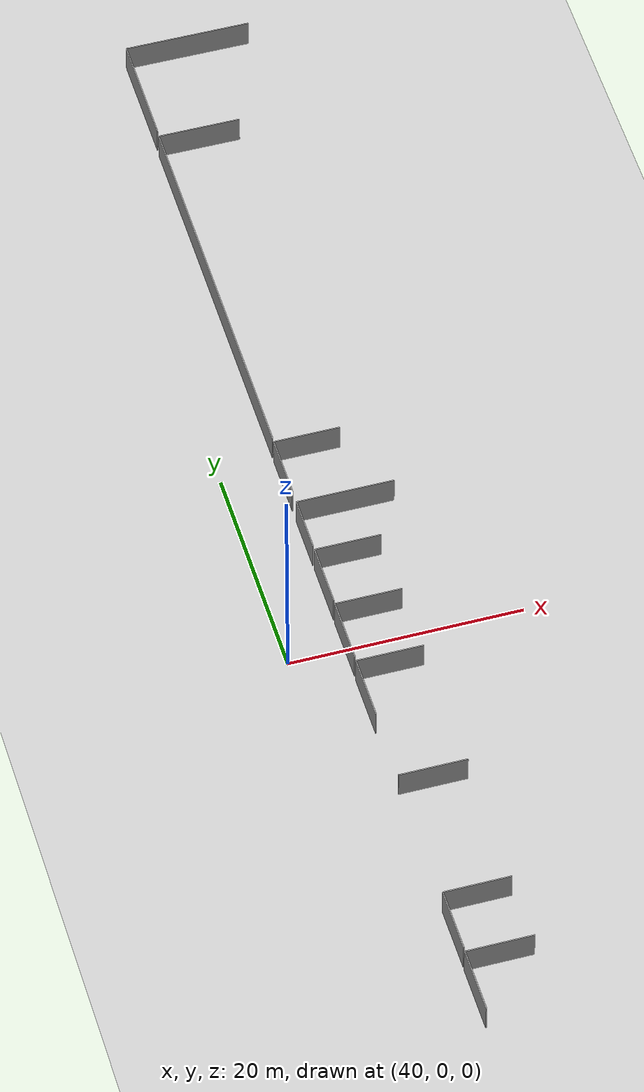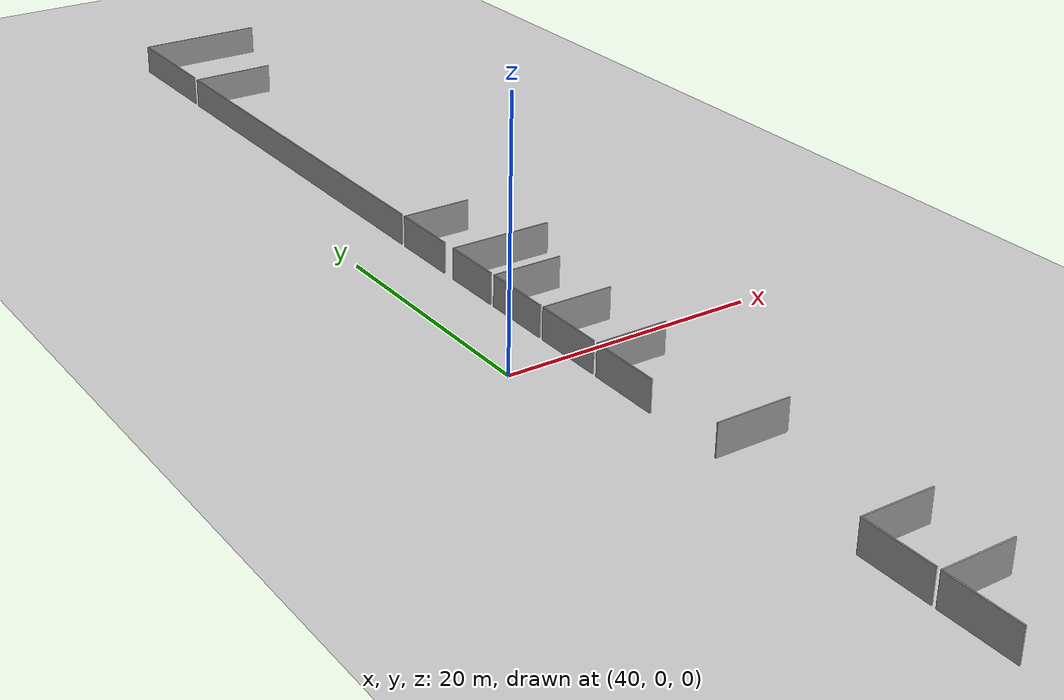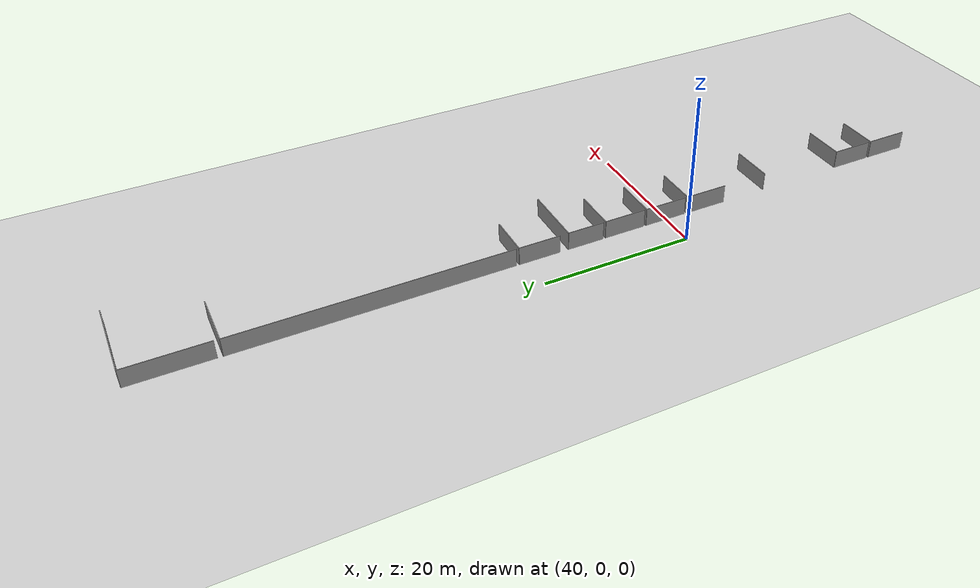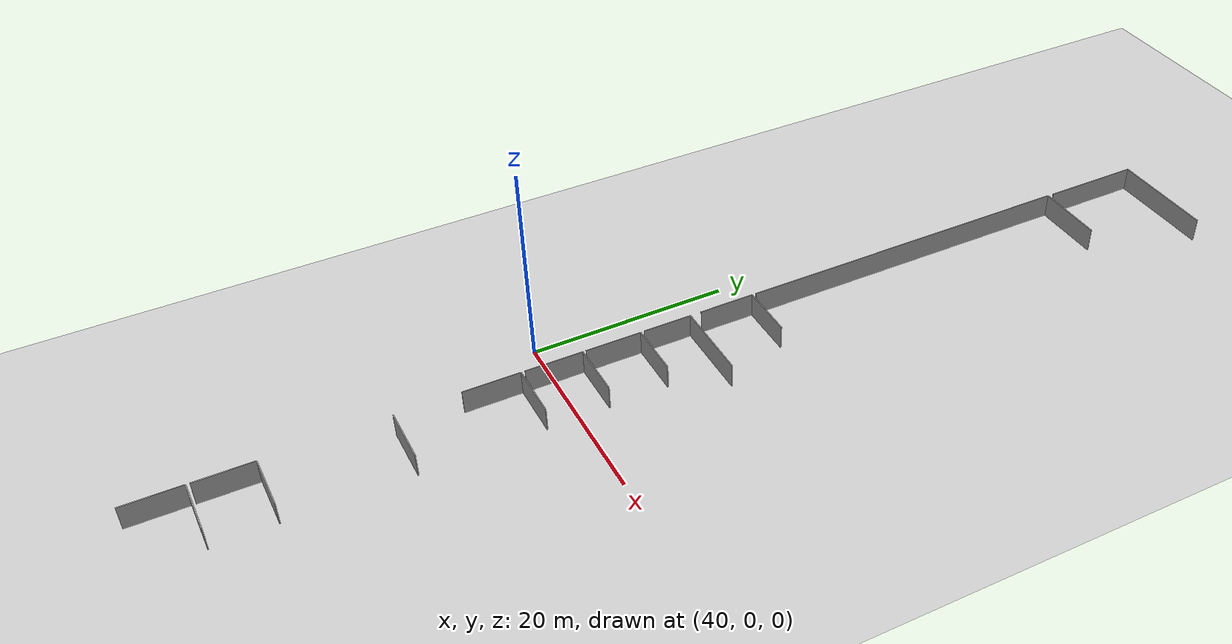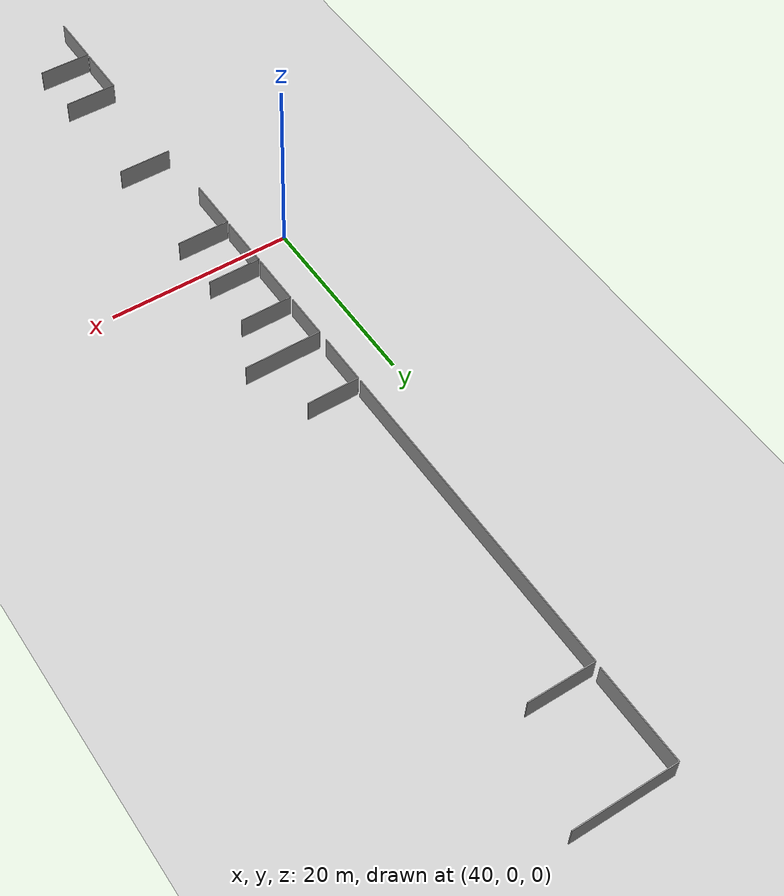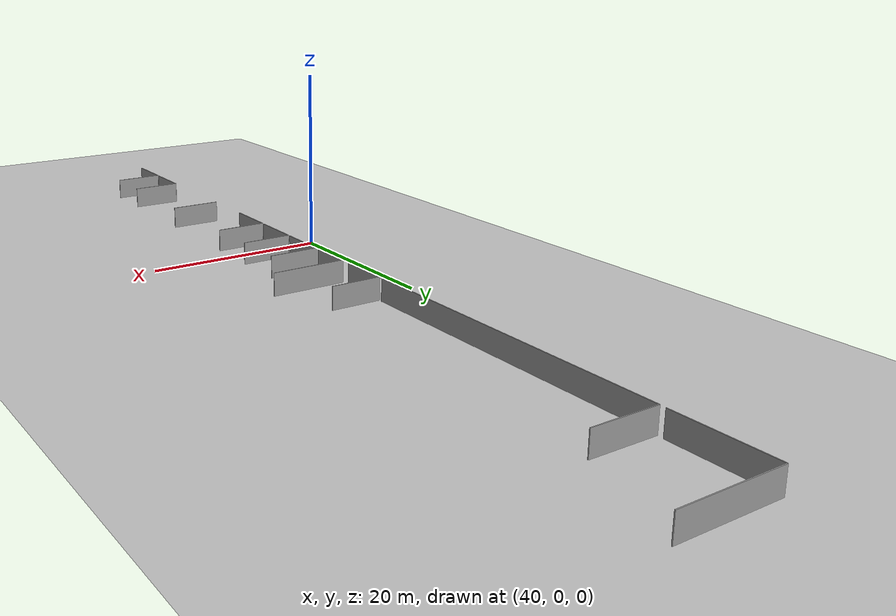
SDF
<sdf version="1.6">
 <world name="default">
  <model name="ground_plane">
   <static>1</static>
   <link name="link">
    <collision name="collision">
     <geometry><plane><normal>0 0 1</normal><size>100 100</size></plane></geometry>
     <surface><friction><ode><mu>100</mu><mu2>50</mu2></ode></friction></surface>
    </collision>
    <visual name="visual">
     <cast_shadows>0</cast_shadows>
     <geometry><plane><normal>0 0 1</normal><size>100 100</size></plane></geometry>
     <material>
      <script><uri>file://media/materials/scripts/gazebo.material</uri><name>Gazebo/Grey</name></script>
     </material>
    </visual>
   </link>
  </model>
  <model name="50036893">
   <static>1</static>
   <link name="Wall_377">
    <collision name="Wall_377_Collision">
     <geometry><box><size>5.75689367665 0.1 2.5</size></box></geometry>
     <pose>2.87844683832 0 1.25 0 0 0</pose>
    </collision>
    <visual name="Wall_377_Visual">
     <pose>2.87844683832 0 1.25 0 0 0</pose>
     <geometry><box><size>5.75689367665 0.1 2.5</size></box></geometry>
     <material>
      <script><uri>file://media/materials/scripts/gazebo.material</uri><name>Gazebo/Grey</name></script>
      <ambient>1 1 1 1</ambient>
     </material>
    </visual>
    <pose>119.046900461 -107.107033484 0 0 0 1.57079632679</pose>
   </link>
   <link name="Wall_378">
    <collision name="Wall_378_Collision">
     <geometry><box><size>5.7165682837 0.1 2.5</size></box></geometry>
     <pose>2.85828414185 0 1.25 0 0 0</pose>
    </collision>
    <visual name="Wall_378_Visual">
     <pose>2.85828414185 0 1.25 0 0 0</pose>
     <geometry><box><size>5.7165682837 0.1 2.5</size></box></geometry>
     <material>
      <script><uri>file://media/materials/scripts/gazebo.material</uri><name>Gazebo/Grey</name></script>
      <ambient>1 1 1 1</ambient>
     </material>
    </visual>
    <pose>119.046900461 -101.350139807 0 0 0 0.0</pose>
   </link>
   <link name="Wall_386">
    <collision name="Wall_386_Collision">
     <geometry><box><size>5.67167775192 0.1 2.5</size></box></geometry>
     <pose>2.83583887596 0 1.25 0 0 0</pose>
    </collision>
    <visual name="Wall_386_Visual">
     <pose>2.83583887596 0 1.25 0 0 0</pose>
     <geometry><box><size>5.67167775192 0.1 2.5</size></box></geometry>
     <material>
      <script><uri>file://media/materials/scripts/gazebo.material</uri><name>Gazebo/Grey</name></script>
      <ambient>1 1 1 1</ambient>
     </material>
    </visual>
    <pose>119.064653779 -101.013587628 0 0 0 1.57079632679</pose>
   </link>
   <link name="Wall_387">
    <collision name="Wall_387_Collision">
     <geometry><box><size>5.68613402487 0.1 2.5</size></box></geometry>
     <pose>2.84306701243 0 1.25 0 0 0</pose>
    </collision>
    <visual name="Wall_387_Visual">
     <pose>2.84306701243 0 1.25 0 0 0</pose>
     <geometry><box><size>5.68613402487 0.1 2.5</size></box></geometry>
     <material>
      <script><uri>file://media/materials/scripts/gazebo.material</uri><name>Gazebo/Grey</name></script>
      <ambient>1 1 1 1</ambient>
     </material>
    </visual>
    <pose>119.064653779 -95.3419098766 0 0 0 0.0</pose>
   </link>
   <link name="Wall_396">
    <collision name="Wall_396_Collision">
     <geometry><box><size>5.80026249548 0.1 2.5</size></box></geometry>
     <pose>2.90013124774 0 1.25 0 0 0</pose>
    </collision>
    <visual name="Wall_396_Visual">
     <pose>2.90013124774 0 1.25 0 0 0</pose>
     <geometry><box><size>5.80026249548 0.1 2.5</size></box></geometry>
     <material>
      <script><uri>file://media/materials/scripts/gazebo.material</uri><name>Gazebo/Grey</name></script>
      <ambient>1 1 1 1</ambient>
     </material>
    </visual>
    <pose>119.03421952 -83.1953435584 0 0 0 0.0</pose>
   </link>
   <link name="Wall_413">
    <collision name="Wall_413_Collision">
     <geometry><box><size>5.75308939429 0.1 2.5</size></box></geometry>
     <pose>2.87654469715 0 1.25 0 0 0</pose>
    </collision>
    <visual name="Wall_413_Visual">
     <pose>2.87654469715 0 1.25 0 0 0</pose>
     <geometry><box><size>5.75308939429 0.1 2.5</size></box></geometry>
     <material>
      <script><uri>file://media/materials/scripts/gazebo.material</uri><name>Gazebo/Grey</name></script>
      <ambient>1 1 1 1</ambient>
     </material>
    </visual>
    <pose>119.079870908 -76.7902001687 0 0 0 1.57079632679</pose>
   </link>
   <link name="Wall_414">
    <collision name="Wall_414_Collision">
     <geometry><box><size>5.70388734252 0.1 2.5</size></box></geometry>
     <pose>2.85194367126 0 1.25 0 0 0</pose>
    </collision>
    <visual name="Wall_414_Visual">
     <pose>2.85194367126 0 1.25 0 0 0</pose>
     <geometry><box><size>5.70388734252 0.1 2.5</size></box></geometry>
     <material>
      <script><uri>file://media/materials/scripts/gazebo.material</uri><name>Gazebo/Grey</name></script>
      <ambient>1 1 1 1</ambient>
     </material>
    </visual>
    <pose>119.079870908 -71.0371107744 0 0 0 0.0</pose>
   </link>
   <link name="Wall_422">
    <collision name="Wall_422_Collision">
     <geometry><box><size>5.80026249548 0.1 2.5</size></box></geometry>
     <pose>2.90013124774 0 1.25 0 0 0</pose>
    </collision>
    <visual name="Wall_422_Visual">
     <pose>2.90013124774 0 1.25 0 0 0</pose>
     <geometry><box><size>5.80026249548 0.1 2.5</size></box></geometry>
     <material>
      <script><uri>file://media/materials/scripts/gazebo.material</uri><name>Gazebo/Grey</name></script>
      <ambient>1 1 1 1</ambient>
     </material>
    </visual>
    <pose>119.107768979 -70.6665736731 0 0 0 1.57079632679</pose>
   </link>
   <link name="Wall_423">
    <collision name="Wall_423_Collision">
     <geometry><box><size>5.71403209546 0.1 2.5</size></box></geometry>
     <pose>2.85701604773 0 1.25 0 0 0</pose>
    </collision>
    <visual name="Wall_423_Visual">
     <pose>2.85701604773 0 1.25 0 0 0</pose>
     <geometry><box><size>5.71403209546 0.1 2.5</size></box></geometry>
     <material>
      <script><uri>file://media/materials/scripts/gazebo.material</uri><name>Gazebo/Grey</name></script>
      <ambient>1 1 1 1</ambient>
     </material>
    </visual>
    <pose>119.107768979 -64.8663111776 0 0 0 0.0</pose>
   </link>
   <link name="Wall_431">
    <collision name="Wall_431_Collision">
     <geometry><box><size>5.64961291427 0.1 2.5</size></box></geometry>
     <pose>2.82480645714 0 1.25 0 0 0</pose>
    </collision>
    <visual name="Wall_431_Visual">
     <pose>2.82480645714 0 1.25 0 0 0</pose>
     <geometry><box><size>5.64961291427 0.1 2.5</size></box></geometry>
     <material>
      <script><uri>file://media/materials/scripts/gazebo.material</uri><name>Gazebo/Grey</name></script>
      <ambient>1 1 1 1</ambient>
     </material>
    </visual>
    <pose>119.112841355 -64.553852787 0 0 0 1.57079632679</pose>
   </link>
   <link name="Wall_432">
    <collision name="Wall_432_Collision">
     <geometry><box><size>5.64809120133 0.1 2.5</size></box></geometry>
     <pose>2.82404560066 0 1.25 0 0 0</pose>
    </collision>
    <visual name="Wall_432_Visual">
     <pose>2.82404560066 0 1.25 0 0 0</pose>
     <geometry><box><size>5.64809120133 0.1 2.5</size></box></geometry>
     <material>
      <script><uri>file://media/materials/scripts/gazebo.material</uri><name>Gazebo/Grey</name></script>
      <ambient>1 1 1 1</ambient>
     </material>
    </visual>
    <pose>119.112841355 -58.9042398727 0 0 0 0.0</pose>
   </link>
   <link name="Wall_440">
    <collision name="Wall_440_Collision">
     <geometry><box><size>4.93998744587 0.1 2.5</size></box></geometry>
     <pose>2.46999372293 0 1.25 0 0 0</pose>
    </collision>
    <visual name="Wall_440_Visual">
     <pose>2.46999372293 0 1.25 0 0 0</pose>
     <geometry><box><size>4.93998744587 0.1 2.5</size></box></geometry>
     <material>
      <script><uri>file://media/materials/scripts/gazebo.material</uri><name>Gazebo/Grey</name></script>
      <ambient>1 1 1 1</ambient>
     </material>
    </visual>
    <pose>119.095088037 -58.548666282 0 0 0 1.57079632679</pose>
   </link>
   <link name="Wall_441">
    <collision name="Wall_441_Collision">
     <geometry><box><size>8.36942117844 0.1 2.5</size></box></geometry>
     <pose>4.18471058922 0 1.25 0 0 0</pose>
    </collision>
    <visual name="Wall_441_Visual">
     <pose>4.18471058922 0 1.25 0 0 0</pose>
     <geometry><box><size>8.36942117844 0.1 2.5</size></box></geometry>
     <material>
      <script><uri>file://media/materials/scripts/gazebo.material</uri><name>Gazebo/Grey</name></script>
      <ambient>1 1 1 1</ambient>
     </material>
    </visual>
    <pose>119.095088037 -53.6086788361 0 0 0 0.0</pose>
   </link>
   <link name="Wall_467">
    <collision name="Wall_467_Collision">
     <geometry><box><size>35.6129015896 0.1 2.5</size></box></geometry>
     <pose>17.8064507948 0 1.25 0 0 0</pose>
    </collision>
    <visual name="Wall_467_Visual">
     <pose>17.8064507948 0 1.25 0 0 0</pose>
     <geometry><box><size>35.6129015896 0.1 2.5</size></box></geometry>
     <material>
      <script><uri>file://media/materials/scripts/gazebo.material</uri><name>Gazebo/Grey</name></script>
      <ambient>1 1 1 1</ambient>
     </material>
    </visual>
    <pose>119.100160414 -46.433548698 0 0 0 1.57079632679</pose>
   </link>
   <link name="Wall_468">
    <collision name="Wall_468_Collision">
     <geometry><box><size>7.16726795463 0.1 2.5</size></box></geometry>
     <pose>3.58363397731 0 1.25 0 0 0</pose>
    </collision>
    <visual name="Wall_468_Visual">
     <pose>3.58363397731 0 1.25 0 0 0</pose>
     <geometry><box><size>7.16726795463 0.1 2.5</size></box></geometry>
     <material>
      <script><uri>file://media/materials/scripts/gazebo.material</uri><name>Gazebo/Grey</name></script>
      <ambient>1 1 1 1</ambient>
     </material>
    </visual>
    <pose>119.100160414 -10.8206471084 0 0 0 0.0</pose>
   </link>
   <link name="Wall_475">
    <collision name="Wall_475_Collision">
     <geometry><box><size>5.61867141779 0.1 2.5</size></box></geometry>
     <pose>2.8093357089 0 1.25 0 0 0</pose>
    </collision>
    <visual name="Wall_475_Visual">
     <pose>2.8093357089 0 1.25 0 0 0</pose>
     <geometry><box><size>5.61867141779 0.1 2.5</size></box></geometry>
     <material>
      <script><uri>file://media/materials/scripts/gazebo.material</uri><name>Gazebo/Grey</name></script>
      <ambient>1 1 1 1</ambient>
     </material>
    </visual>
    <pose>119.092551849 -52.4460901488 0 0 0 1.57079632679</pose>
   </link>
   <link name="Wall_476">
    <collision name="Wall_476_Collision">
     <geometry><box><size>5.67091689545 0.1 2.5</size></box></geometry>
     <pose>2.83545844773 0 1.25 0 0 0</pose>
    </collision>
    <visual name="Wall_476_Visual">
     <pose>2.83545844773 0 1.25 0 0 0</pose>
     <geometry><box><size>5.67091689545 0.1 2.5</size></box></geometry>
     <material>
      <script><uri>file://media/materials/scripts/gazebo.material</uri><name>Gazebo/Grey</name></script>
      <ambient>1 1 1 1</ambient>
     </material>
    </visual>
    <pose>119.092551849 -46.827418731 0 0 0 0.0</pose>
   </link>
   <link name="Wall_481">
    <collision name="Wall_481_Collision">
     <geometry><box><size>10.1784842471 0.1 2.5</size></box></geometry>
     <pose>5.08924212355 0 1.25 0 0 0</pose>
    </collision>
    <visual name="Wall_481_Visual">
     <pose>5.08924212355 0 1.25 0 0 0</pose>
     <geometry><box><size>10.1784842471 0.1 2.5</size></box></geometry>
     <material>
      <script><uri>file://media/materials/scripts/gazebo.material</uri><name>Gazebo/Grey</name></script>
      <ambient>1 1 1 1</ambient>
     </material>
    </visual>
    <pose>119.140739426 -10.1784842471 0 0 0 1.57079632679</pose>
   </link>
   <link name="Wall_482">
    <collision name="Wall_482_Collision">
     <geometry><box><size>10.956333179 0.1 2.5</size></box></geometry>
     <pose>5.47816658952 0 1.25 0 0 0</pose>
    </collision>
    <visual name="Wall_482_Visual">
     <pose>5.47816658952 0 1.25 0 0 0</pose>
     <geometry><box><size>10.956333179 0.1 2.5</size></box></geometry>
     <material>
      <script><uri>file://media/materials/scripts/gazebo.material</uri><name>Gazebo/Grey</name></script>
      <ambient>1 1 1 1</ambient>
     </material>
    </visual>
    <pose>119.140739426 -0.0 0 0 0 0.0</pose>
   </link>
   <pose>-74.25 67.8925905261 0 0 0 0</pose>
  </model>
 </world>
</sdf>
